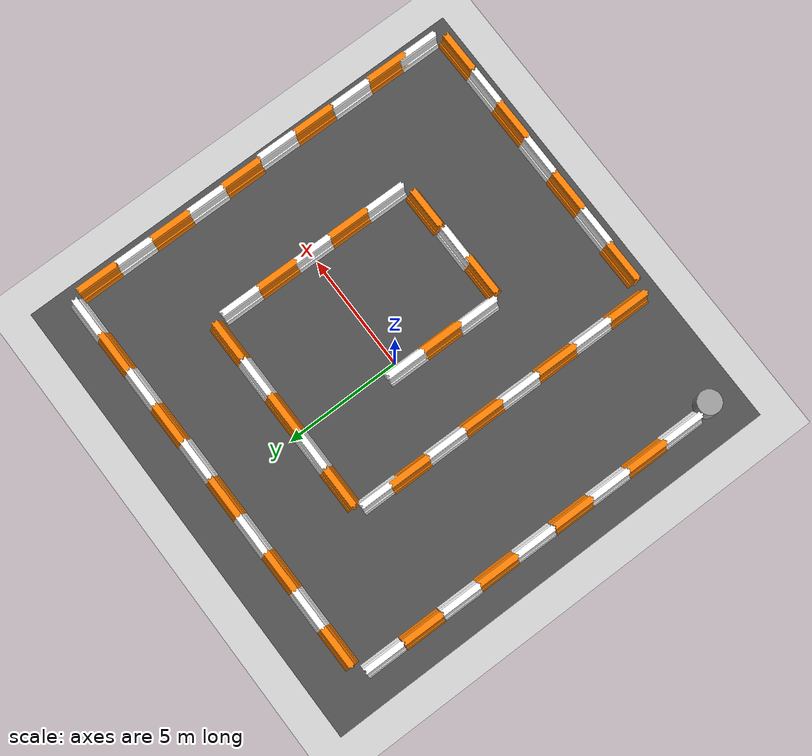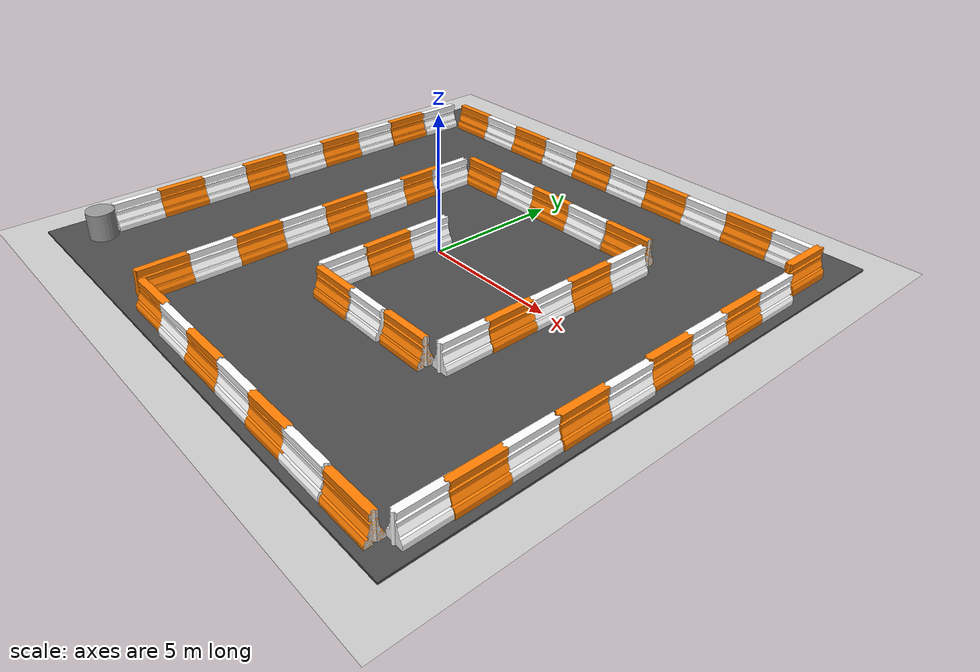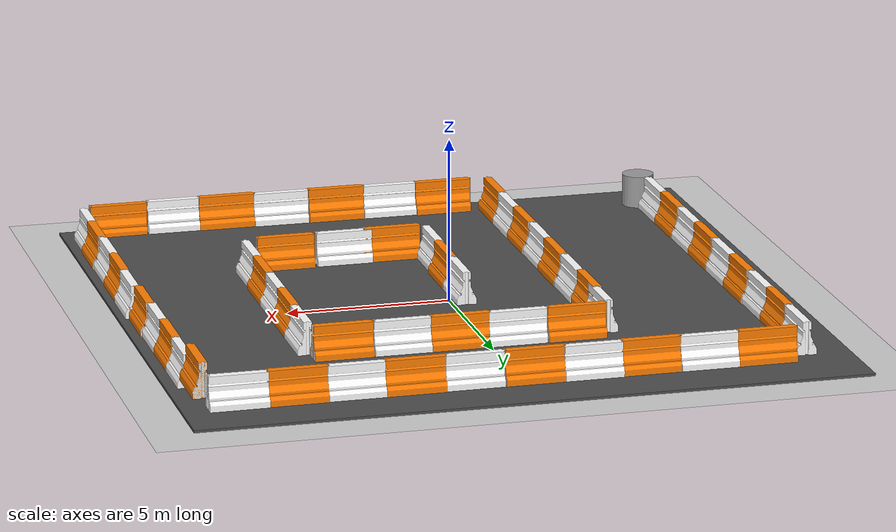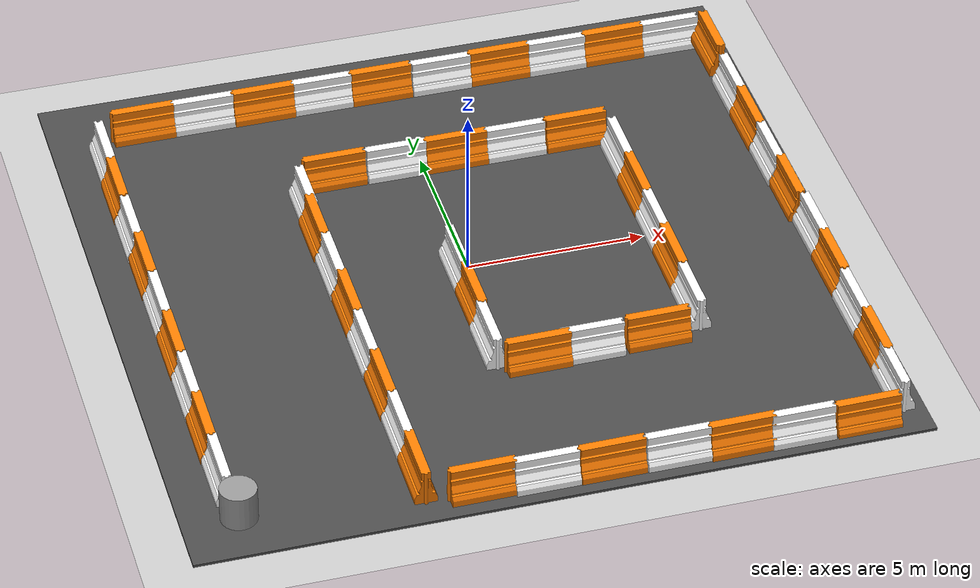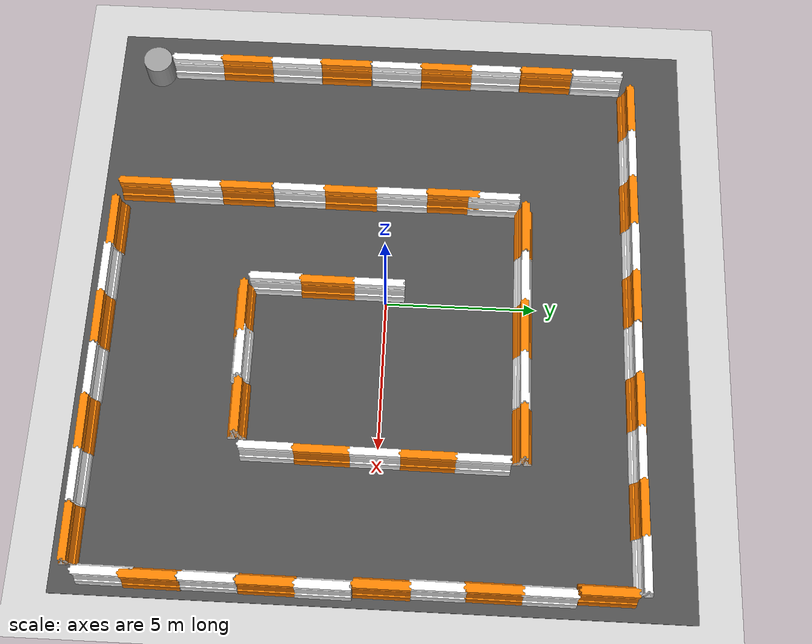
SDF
<sdf version="1.6">
 <world name="default">
  <light name="sun" type="directional">
   <pose>0 0 10 0 -0 0</pose>
   <diffuse>0.8 0.8 0.8 1</diffuse>
   <specular>0.2 0.2 0.2 1</specular>
   <attenuation>
    <range>1000</range>
    <constant>0.9</constant>
    <linear>0.01</linear>
    <quadratic>0.001</quadratic>
   </attenuation>
   <direction>-0.5 0.1 -0.9</direction>
  </light>
  <model name="ground_plane">
   <static>1</static>
   <link name="link">
    <collision name="collision">
     <geometry><plane><normal>0 0 1</normal><size>100 100</size></plane></geometry>
     <surface><friction><ode><mu>100</mu><mu2>50</mu2></ode></friction></surface>
    </collision>
    <visual name="visual">
     <cast_shadows>0</cast_shadows>
     <geometry><plane><normal>0 0 1</normal><size>100 100</size></plane></geometry>
     <material>
      <script><uri>file://media/materials/scripts/gazebo.material</uri><name>Gazebo/Grey</name></script>
     </material>
    </visual>
   </link>
  </model>
  <gravity>0 0 -9.8</gravity>
  <magnetic_field>6e-06 2.3e-05 -4.2e-05</magnetic_field>
  <atmosphere type="adiabatic"/>
  <physics name="default_physics" default="0" type="ode">
   <max_step_size>0.001</max_step_size>
   <real_time_factor>1</real_time_factor>
   <real_time_update_rate>1000</real_time_update_rate>
  </physics>
  <scene><ambient>0.4 0.4 0.4 1</ambient><background>0.7 0.7 0.7 1</background><shadows>1</shadows></scene>
  <spherical_coordinates>
   <surface_model>EARTH_WGS84</surface_model>
   <latitude_deg>0</latitude_deg>
   <longitude_deg>0</longitude_deg>
   <elevation>0</elevation>
   <heading_deg>0</heading_deg>
  </spherical_coordinates>
  <model name="drc_practice_white_jersey_barrier">
   <static>1</static>
   <link name="link">
    <visual name="visual">
     <geometry>
      <mesh><uri>model://drc_practice_white_jersey_barrier/meshes/jersey_barrier.dae</uri></mesh>
     </geometry>
    </visual>
    <collision name="collision">
     <geometry>
      <mesh><uri>model://drc_practice_white_jersey_barrier/meshes/jersey_barrier.dae</uri></mesh>
     </geometry>
    </collision>
   </link>
   <pose>-8.62001 -7.06221 0 0 -0 0</pose>
  </model>
  <model name="drc_practice_organge_jersey_barrier">
   <static>1</static>
   <link name="link">
    <visual name="visual">
     <geometry>
      <mesh><uri>model://drc_practice_orange_jersey_barrier/meshes/jersey_barrier.dae</uri></mesh>
     </geometry>
    </visual>
    <collision name="collision">
     <geometry>
      <mesh><uri>model://drc_practice_orange_jersey_barrier/meshes/jersey_barrier.dae</uri></mesh>
     </geometry>
    </collision>
   </link>
   <pose>-8.62729 -5.31264 0 0 -0 0</pose>
  </model>
  <model name="drc_practice_white_jersey_barrier_0">
   <static>1</static>
   <link name="link">
    <visual name="visual">
     <geometry>
      <mesh><uri>model://drc_practice_white_jersey_barrier/meshes/jersey_barrier.dae</uri></mesh>
     </geometry>
    </visual>
    <collision name="collision">
     <geometry>
      <mesh><uri>model://drc_practice_white_jersey_barrier/meshes/jersey_barrier.dae</uri></mesh>
     </geometry>
    </collision>
   </link>
   <pose>-8.63117 -3.55828 0 0 -0 0</pose>
  </model>
  <model name="drc_practice_organge_jersey_barrier_0">
   <static>1</static>
   <link name="link">
    <visual name="visual">
     <geometry>
      <mesh><uri>model://drc_practice_orange_jersey_barrier/meshes/jersey_barrier.dae</uri></mesh>
     </geometry>
    </visual>
    <collision name="collision">
     <geometry>
      <mesh><uri>model://drc_practice_orange_jersey_barrier/meshes/jersey_barrier.dae</uri></mesh>
     </geometry>
    </collision>
   </link>
   <pose>-8.63117 -1.7988 0 0 -0 0</pose>
  </model>
  <model name="drc_practice_white_jersey_barrier_1">
   <static>1</static>
   <link name="link">
    <visual name="visual">
     <geometry>
      <mesh><uri>model://drc_practice_white_jersey_barrier/meshes/jersey_barrier.dae</uri></mesh>
     </geometry>
    </visual>
    <collision name="collision">
     <geometry>
      <mesh><uri>model://drc_practice_white_jersey_barrier/meshes/jersey_barrier.dae</uri></mesh>
     </geometry>
    </collision>
   </link>
   <pose>-8.63117 -0.016466 0 0 -0 0</pose>
  </model>
  <model name="drc_practice_organge_jersey_barrier_1">
   <static>1</static>
   <link name="link">
    <visual name="visual">
     <geometry>
      <mesh><uri>model://drc_practice_orange_jersey_barrier/meshes/jersey_barrier.dae</uri></mesh>
     </geometry>
    </visual>
    <collision name="collision">
     <geometry>
      <mesh><uri>model://drc_practice_orange_jersey_barrier/meshes/jersey_barrier.dae</uri></mesh>
     </geometry>
    </collision>
   </link>
   <pose>-8.63117 1.74301 0 0 -0 0</pose>
  </model>
  <model name="drc_practice_white_jersey_barrier_2">
   <static>1</static>
   <link name="link">
    <visual name="visual">
     <geometry>
      <mesh><uri>model://drc_practice_white_jersey_barrier/meshes/jersey_barrier.dae</uri></mesh>
     </geometry>
    </visual>
    <collision name="collision">
     <geometry>
      <mesh><uri>model://drc_practice_white_jersey_barrier/meshes/jersey_barrier.dae</uri></mesh>
     </geometry>
    </collision>
   </link>
   <pose>-8.65403 3.47964 0 0 -0 0</pose>
  </model>
  <model name="drc_practice_organge_jersey_barrier_2">
   <static>1</static>
   <link name="link">
    <visual name="visual">
     <geometry>
      <mesh><uri>model://drc_practice_orange_jersey_barrier/meshes/jersey_barrier.dae</uri></mesh>
     </geometry>
    </visual>
    <collision name="collision">
     <geometry>
      <mesh><uri>model://drc_practice_orange_jersey_barrier/meshes/jersey_barrier.dae</uri></mesh>
     </geometry>
    </collision>
   </link>
   <pose>-8.65403 5.26198 0 0 -0 0</pose>
  </model>
  <model name="drc_practice_white_jersey_barrier_3">
   <static>1</static>
   <link name="link">
    <visual name="visual">
     <geometry>
      <mesh><uri>model://drc_practice_white_jersey_barrier/meshes/jersey_barrier.dae</uri></mesh>
     </geometry>
    </visual>
    <collision name="collision">
     <geometry>
      <mesh><uri>model://drc_practice_white_jersey_barrier/meshes/jersey_barrier.dae</uri></mesh>
     </geometry>
    </collision>
   </link>
   <pose>-8.63121 7.04431 0 0 -0 0</pose>
  </model>
  <model name="drc_practice_organge_jersey_barrier_3">
   <static>1</static>
   <link name="link">
    <visual name="visual">
     <geometry>
      <mesh><uri>model://drc_practice_orange_jersey_barrier/meshes/jersey_barrier.dae</uri></mesh>
     </geometry>
    </visual>
    <collision name="collision">
     <geometry>
      <mesh><uri>model://drc_practice_orange_jersey_barrier/meshes/jersey_barrier.dae</uri></mesh>
     </geometry>
    </collision>
   </link>
   <pose>-7.29393 8.17346 0 0 0 -1.55728</pose>
  </model>
  <model name="drc_practice_white_jersey_barrier_4">
   <static>1</static>
   <link name="link">
    <visual name="visual">
     <geometry>
      <mesh><uri>model://drc_practice_white_jersey_barrier/meshes/jersey_barrier.dae</uri></mesh>
     </geometry>
    </visual>
    <collision name="collision">
     <geometry>
      <mesh><uri>model://drc_practice_white_jersey_barrier/meshes/jersey_barrier.dae</uri></mesh>
     </geometry>
    </collision>
   </link>
   <pose>-5.54303 8.19136 0 0 0 -1.5638</pose>
  </model>
  <model name="drc_practice_organge_jersey_barrier_3_clone">
   <static>1</static>
   <link name="link">
    <visual name="visual">
     <geometry>
      <mesh><uri>model://drc_practice_orange_jersey_barrier/meshes/jersey_barrier.dae</uri></mesh>
     </geometry>
    </visual>
    <collision name="collision">
     <geometry>
      <mesh><uri>model://drc_practice_orange_jersey_barrier/meshes/jersey_barrier.dae</uri></mesh>
     </geometry>
    </collision>
   </link>
   <pose>-3.7837 8.19183 0 0 0 -1.55728</pose>
  </model>
  <model name="drc_practice_white_jersey_barrier_4_clone">
   <static>1</static>
   <link name="link">
    <visual name="visual">
     <geometry>
      <mesh><uri>model://drc_practice_white_jersey_barrier/meshes/jersey_barrier.dae</uri></mesh>
     </geometry>
    </visual>
    <collision name="collision">
     <geometry>
      <mesh><uri>model://drc_practice_white_jersey_barrier/meshes/jersey_barrier.dae</uri></mesh>
     </geometry>
    </collision>
   </link>
   <pose>-2.06611 8.22766 0 0 0 -1.5638</pose>
  </model>
  <model name="drc_practice_organge_jersey_barrier_3_clone_clone">
   <static>1</static>
   <link name="link">
    <visual name="visual">
     <geometry>
      <mesh><uri>model://drc_practice_orange_jersey_barrier/meshes/jersey_barrier.dae</uri></mesh>
     </geometry>
    </visual>
    <collision name="collision">
     <geometry>
      <mesh><uri>model://drc_practice_orange_jersey_barrier/meshes/jersey_barrier.dae</uri></mesh>
     </geometry>
    </collision>
   </link>
   <pose>-0.311739 8.23041 0 0 0 -1.55728</pose>
  </model>
  <model name="drc_practice_white_jersey_barrier_4_clone_clone">
   <static>1</static>
   <link name="link">
    <visual name="visual">
     <geometry>
      <mesh><uri>model://drc_practice_white_jersey_barrier/meshes/jersey_barrier.dae</uri></mesh>
     </geometry>
    </visual>
    <collision name="collision">
     <geometry>
      <mesh><uri>model://drc_practice_white_jersey_barrier/meshes/jersey_barrier.dae</uri></mesh>
     </geometry>
    </collision>
   </link>
   <pose>1.47021 8.23322 0 0 0 -1.5638</pose>
  </model>
  <model name="drc_practice_organge_jersey_barrier_3_clone_clone_clone">
   <static>1</static>
   <link name="link">
    <visual name="visual">
     <geometry>
      <mesh><uri>model://drc_practice_orange_jersey_barrier/meshes/jersey_barrier.dae</uri></mesh>
     </geometry>
    </visual>
    <collision name="collision">
     <geometry>
      <mesh><uri>model://drc_practice_orange_jersey_barrier/meshes/jersey_barrier.dae</uri></mesh>
     </geometry>
    </collision>
   </link>
   <pose>3.21439 8.27255 0 0 0 -1.55728</pose>
  </model>
  <model name="drc_practice_white_jersey_barrier_4_clone_clone_clone">
   <static>1</static>
   <link name="link">
    <visual name="visual">
     <geometry>
      <mesh><uri>model://drc_practice_white_jersey_barrier/meshes/jersey_barrier.dae</uri></mesh>
     </geometry>
    </visual>
    <collision name="collision">
     <geometry>
      <mesh><uri>model://drc_practice_white_jersey_barrier/meshes/jersey_barrier.dae</uri></mesh>
     </geometry>
    </collision>
   </link>
   <pose>4.92187 8.28349 0 0 0 -1.5638</pose>
  </model>
  <model name="drc_practice_organge_jersey_barrier_3_clone_clone_clone_clone">
   <static>1</static>
   <link name="link">
    <visual name="visual">
     <geometry>
      <mesh><uri>model://drc_practice_orange_jersey_barrier/meshes/jersey_barrier.dae</uri></mesh>
     </geometry>
    </visual>
    <collision name="collision">
     <geometry>
      <mesh><uri>model://drc_practice_orange_jersey_barrier/meshes/jersey_barrier.dae</uri></mesh>
     </geometry>
    </collision>
   </link>
   <pose>6.66177 8.31151 0 0 0 -1.55728</pose>
  </model>
  <model name="asphalt_plane">
   <static>1</static>
   <link name="link">
    <collision name="collision"><geometry><box><size>20 20 0.1</size></box></geometry></collision>
    <visual name="visual">
     <cast_shadows>0</cast_shadows>
     <geometry><box><size>20 20 0.1</size></box></geometry>
     <material>
      <script>
       <uri>model://asphalt_plane/materials/scripts</uri>
       <uri>model://asphalt_plane/materials/textures</uri>
       <name>vrc/asphalt</name>
      </script>
     </material>
    </visual>
   </link>
   <pose>0.006422 0.060238 0 0 -0 0</pose>
  </model>
  <model name="drc_practice_organge_jersey_barrier_4">
   <static>1</static>
   <link name="link">
    <visual name="visual">
     <geometry>
      <mesh><uri>model://drc_practice_orange_jersey_barrier/meshes/jersey_barrier.dae</uri></mesh>
     </geometry>
    </visual>
    <collision name="collision">
     <geometry>
      <mesh><uri>model://drc_practice_orange_jersey_barrier/meshes/jersey_barrier.dae</uri></mesh>
     </geometry>
    </collision>
   </link>
   <pose>9.30105 7.18565 0.290851 0 -0 0</pose>
  </model>
  <model name="drc_practice_white_jersey_barrier_6">
   <static>1</static>
   <link name="link">
    <visual name="visual">
     <geometry>
      <mesh><uri>model://drc_practice_white_jersey_barrier/meshes/jersey_barrier.dae</uri></mesh>
     </geometry>
    </visual>
    <collision name="collision">
     <geometry>
      <mesh><uri>model://drc_practice_white_jersey_barrier/meshes/jersey_barrier.dae</uri></mesh>
     </geometry>
    </collision>
   </link>
   <pose>9.36813 5.43388 0 0 -0 0</pose>
  </model>
  <model name="drc_practice_organge_jersey_barrier_clone">
   <static>1</static>
   <link name="link">
    <visual name="visual">
     <geometry>
      <mesh><uri>model://drc_practice_orange_jersey_barrier/meshes/jersey_barrier.dae</uri></mesh>
     </geometry>
    </visual>
    <collision name="collision">
     <geometry>
      <mesh><uri>model://drc_practice_orange_jersey_barrier/meshes/jersey_barrier.dae</uri></mesh>
     </geometry>
    </collision>
   </link>
   <pose>9.35685 3.76126 0 0 -0 0</pose>
  </model>
  <model name="drc_practice_white_jersey_barrier_2_clone">
   <static>1</static>
   <link name="link">
    <visual name="visual">
     <geometry>
      <mesh><uri>model://drc_practice_white_jersey_barrier/meshes/jersey_barrier.dae</uri></mesh>
     </geometry>
    </visual>
    <collision name="collision">
     <geometry>
      <mesh><uri>model://drc_practice_white_jersey_barrier/meshes/jersey_barrier.dae</uri></mesh>
     </geometry>
    </collision>
   </link>
   <pose>9.36462 2.06056 0 0 -0 0</pose>
  </model>
  <model name="drc_practice_organge_jersey_barrier_5">
   <static>1</static>
   <link name="link">
    <visual name="visual">
     <geometry>
      <mesh><uri>model://drc_practice_orange_jersey_barrier/meshes/jersey_barrier.dae</uri></mesh>
     </geometry>
    </visual>
    <collision name="collision">
     <geometry>
      <mesh><uri>model://drc_practice_orange_jersey_barrier/meshes/jersey_barrier.dae</uri></mesh>
     </geometry>
    </collision>
   </link>
   <pose>9.39818 0.359769 0 0 -0 0</pose>
  </model>
  <model name="drc_practice_white_jersey_barrier_7">
   <static>1</static>
   <link name="link">
    <visual name="visual">
     <geometry>
      <mesh><uri>model://drc_practice_white_jersey_barrier/meshes/jersey_barrier.dae</uri></mesh>
     </geometry>
    </visual>
    <collision name="collision">
     <geometry>
      <mesh><uri>model://drc_practice_white_jersey_barrier/meshes/jersey_barrier.dae</uri></mesh>
     </geometry>
    </collision>
   </link>
   <pose>9.48367 -1.42373 0 0 -0 0</pose>
  </model>
  <model name="drc_practice_organge_jersey_barrier_6">
   <static>1</static>
   <link name="link">
    <visual name="visual">
     <geometry>
      <mesh><uri>model://drc_practice_orange_jersey_barrier/meshes/jersey_barrier.dae</uri></mesh>
     </geometry>
    </visual>
    <collision name="collision">
     <geometry>
      <mesh><uri>model://drc_practice_orange_jersey_barrier/meshes/jersey_barrier.dae</uri></mesh>
     </geometry>
    </collision>
   </link>
   <pose>9.45412 -3.1447 0 0 -0 0</pose>
  </model>
  <model name="drc_practice_white_jersey_barrier_8">
   <static>1</static>
   <link name="link">
    <visual name="visual">
     <geometry>
      <mesh><uri>model://drc_practice_white_jersey_barrier/meshes/jersey_barrier.dae</uri></mesh>
     </geometry>
    </visual>
    <collision name="collision">
     <geometry>
      <mesh><uri>model://drc_practice_white_jersey_barrier/meshes/jersey_barrier.dae</uri></mesh>
     </geometry>
    </collision>
   </link>
   <pose>9.42629 -4.92564 0 0 -0 0</pose>
  </model>
  <model name="drc_practice_organge_jersey_barrier_7">
   <static>1</static>
   <link name="link">
    <visual name="visual">
     <geometry>
      <mesh><uri>model://drc_practice_orange_jersey_barrier/meshes/jersey_barrier.dae</uri></mesh>
     </geometry>
    </visual>
    <collision name="collision">
     <geometry>
      <mesh><uri>model://drc_practice_orange_jersey_barrier/meshes/jersey_barrier.dae</uri></mesh>
     </geometry>
    </collision>
   </link>
   <pose>9.43964 -6.68634 0 0 -0 0</pose>
  </model>
  <model name="drc_practice_organge_jersey_barrier_3_clone_clone_clone_clone_0">
   <static>1</static>
   <link name="link">
    <visual name="visual">
     <geometry>
      <mesh><uri>model://drc_practice_orange_jersey_barrier/meshes/jersey_barrier.dae</uri></mesh>
     </geometry>
    </visual>
    <collision name="collision">
     <geometry>
      <mesh><uri>model://drc_practice_orange_jersey_barrier/meshes/jersey_barrier.dae</uri></mesh>
     </geometry>
    </collision>
   </link>
   <pose>8.25161 -9.36879 -0.056278 0 0 -1.55728</pose>
  </model>
  <model name="drc_practice_white_jersey_barrier_4_clone_clone_clone_clone_clone">
   <static>1</static>
   <link name="link">
    <visual name="visual">
     <geometry>
      <mesh><uri>model://drc_practice_white_jersey_barrier/meshes/jersey_barrier.dae</uri></mesh>
     </geometry>
    </visual>
    <collision name="collision">
     <geometry>
      <mesh><uri>model://drc_practice_white_jersey_barrier/meshes/jersey_barrier.dae</uri></mesh>
     </geometry>
    </collision>
   </link>
   <pose>6.44547 -9.37255 0 0 0 -1.5638</pose>
  </model>
  <model name="drc_practice_organge_jersey_barrier_3_clone_clone_clone_clone_0_clone">
   <static>1</static>
   <link name="link">
    <visual name="visual">
     <geometry>
      <mesh><uri>model://drc_practice_orange_jersey_barrier/meshes/jersey_barrier.dae</uri></mesh>
     </geometry>
    </visual>
    <collision name="collision">
     <geometry>
      <mesh><uri>model://drc_practice_orange_jersey_barrier/meshes/jersey_barrier.dae</uri></mesh>
     </geometry>
    </collision>
   </link>
   <pose>4.79474 -9.35603 0 0 0 -1.55728</pose>
  </model>
  <model name="drc_practice_white_jersey_barrier_4_clone_clone_clone_clone_clone_clone">
   <static>1</static>
   <link name="link">
    <visual name="visual">
     <geometry>
      <mesh><uri>model://drc_practice_white_jersey_barrier/meshes/jersey_barrier.dae</uri></mesh>
     </geometry>
    </visual>
    <collision name="collision">
     <geometry>
      <mesh><uri>model://drc_practice_white_jersey_barrier/meshes/jersey_barrier.dae</uri></mesh>
     </geometry>
    </collision>
   </link>
   <pose>3.05005 -9.32941 0 0 0 -1.5638</pose>
  </model>
  <model name="drc_practice_organge_jersey_barrier_3_clone_clone_clone_clone_0_clone_clone">
   <static>1</static>
   <link name="link">
    <visual name="visual">
     <geometry>
      <mesh><uri>model://drc_practice_orange_jersey_barrier/meshes/jersey_barrier.dae</uri></mesh>
     </geometry>
    </visual>
    <collision name="collision">
     <geometry>
      <mesh><uri>model://drc_practice_orange_jersey_barrier/meshes/jersey_barrier.dae</uri></mesh>
     </geometry>
    </collision>
   </link>
   <pose>1.26706 -9.32155 0 0 0 -1.55728</pose>
  </model>
  <model name="drc_practice_organge_jersey_barrier_clone_0">
   <static>1</static>
   <link name="link">
    <visual name="visual">
     <geometry>
      <mesh><uri>model://drc_practice_orange_jersey_barrier/meshes/jersey_barrier.dae</uri></mesh>
     </geometry>
    </visual>
    <collision name="collision">
     <geometry>
      <mesh><uri>model://drc_practice_orange_jersey_barrier/meshes/jersey_barrier.dae</uri></mesh>
     </geometry>
    </collision>
   </link>
   <pose>-3.68251 -8.32459 0 0 -0 0</pose>
  </model>
  <model name="drc_practice_white_jersey_barrier_0_clone">
   <static>1</static>
   <link name="link">
    <visual name="visual">
     <geometry>
      <mesh><uri>model://drc_practice_white_jersey_barrier/meshes/jersey_barrier.dae</uri></mesh>
     </geometry>
    </visual>
    <collision name="collision">
     <geometry>
      <mesh><uri>model://drc_practice_white_jersey_barrier/meshes/jersey_barrier.dae</uri></mesh>
     </geometry>
    </collision>
   </link>
   <pose>-3.67794 -6.625 0 0 -0 0</pose>
  </model>
  <model name="drc_practice_organge_jersey_barrier_clone_0_clone">
   <static>1</static>
   <link name="link">
    <visual name="visual">
     <geometry>
      <mesh><uri>model://drc_practice_orange_jersey_barrier/meshes/jersey_barrier.dae</uri></mesh>
     </geometry>
    </visual>
    <collision name="collision">
     <geometry>
      <mesh><uri>model://drc_practice_orange_jersey_barrier/meshes/jersey_barrier.dae</uri></mesh>
     </geometry>
    </collision>
   </link>
   <pose>-3.68895 -4.87973 0 0 -0 0</pose>
  </model>
  <model name="drc_practice_white_jersey_barrier_0_clone_clone">
   <static>1</static>
   <link name="link">
    <visual name="visual">
     <geometry>
      <mesh><uri>model://drc_practice_white_jersey_barrier/meshes/jersey_barrier.dae</uri></mesh>
     </geometry>
    </visual>
    <collision name="collision">
     <geometry>
      <mesh><uri>model://drc_practice_white_jersey_barrier/meshes/jersey_barrier.dae</uri></mesh>
     </geometry>
    </collision>
   </link>
   <pose>-3.70219 -3.1056 0 0 -0 0</pose>
  </model>
  <model name="drc_practice_organge_jersey_barrier_clone_0_clone_clone">
   <static>1</static>
   <link name="link">
    <visual name="visual">
     <geometry>
      <mesh><uri>model://drc_practice_orange_jersey_barrier/meshes/jersey_barrier.dae</uri></mesh>
     </geometry>
    </visual>
    <collision name="collision">
     <geometry>
      <mesh><uri>model://drc_practice_orange_jersey_barrier/meshes/jersey_barrier.dae</uri></mesh>
     </geometry>
    </collision>
   </link>
   <pose>-3.68814 -1.34998 0 0 -0 0</pose>
  </model>
  <model name="drc_practice_white_jersey_barrier_0_clone_clone_0">
   <static>1</static>
   <link name="link">
    <visual name="visual">
     <geometry>
      <mesh><uri>model://drc_practice_white_jersey_barrier/meshes/jersey_barrier.dae</uri></mesh>
     </geometry>
    </visual>
    <collision name="collision">
     <geometry>
      <mesh><uri>model://drc_practice_white_jersey_barrier/meshes/jersey_barrier.dae</uri></mesh>
     </geometry>
    </collision>
   </link>
   <pose>-3.70758 0.377763 0 0 -0 0</pose>
  </model>
  <model name="drc_practice_organge_jersey_barrier_clone_0_clone_clone_0">
   <static>1</static>
   <link name="link">
    <visual name="visual">
     <geometry>
      <mesh><uri>model://drc_practice_orange_jersey_barrier/meshes/jersey_barrier.dae</uri></mesh>
     </geometry>
    </visual>
    <collision name="collision">
     <geometry>
      <mesh><uri>model://drc_practice_orange_jersey_barrier/meshes/jersey_barrier.dae</uri></mesh>
     </geometry>
    </collision>
   </link>
   <pose>-3.72892 2.1308 0 0 -0 0</pose>
  </model>
  <model name="drc_practice_white_jersey_barrier_0_clone_clone_clone">
   <static>1</static>
   <link name="link">
    <visual name="visual">
     <geometry>
      <mesh><uri>model://drc_practice_white_jersey_barrier/meshes/jersey_barrier.dae</uri></mesh>
     </geometry>
    </visual>
    <collision name="collision">
     <geometry>
      <mesh><uri>model://drc_practice_white_jersey_barrier/meshes/jersey_barrier.dae</uri></mesh>
     </geometry>
    </collision>
   </link>
   <pose>-3.68719 3.507 0 0 -0 0</pose>
  </model>
  <model name="drc_practice_organge_jersey_barrier_3_clone_clone_clone_0">
   <static>1</static>
   <link name="link">
    <visual name="visual">
     <geometry>
      <mesh><uri>model://drc_practice_orange_jersey_barrier/meshes/jersey_barrier.dae</uri></mesh>
     </geometry>
    </visual>
    <collision name="collision">
     <geometry>
      <mesh><uri>model://drc_practice_orange_jersey_barrier/meshes/jersey_barrier.dae</uri></mesh>
     </geometry>
    </collision>
   </link>
   <pose>-2.61096 4.57246 0 0 0 -1.55728</pose>
  </model>
  <model name="drc_practice_white_jersey_barrier_4_clone_clone_clone_0">
   <static>1</static>
   <link name="link">
    <visual name="visual">
     <geometry>
      <mesh><uri>model://drc_practice_white_jersey_barrier/meshes/jersey_barrier.dae</uri></mesh>
     </geometry>
    </visual>
    <collision name="collision">
     <geometry>
      <mesh><uri>model://drc_practice_white_jersey_barrier/meshes/jersey_barrier.dae</uri></mesh>
     </geometry>
    </collision>
   </link>
   <pose>-0.822004 4.57105 0 0 0 -1.5638</pose>
  </model>
  <model name="drc_practice_organge_jersey_barrier_3_clone_clone_clone_0_clone">
   <static>1</static>
   <link name="link">
    <visual name="visual">
     <geometry>
      <mesh><uri>model://drc_practice_orange_jersey_barrier/meshes/jersey_barrier.dae</uri></mesh>
     </geometry>
    </visual>
    <collision name="collision">
     <geometry>
      <mesh><uri>model://drc_practice_orange_jersey_barrier/meshes/jersey_barrier.dae</uri></mesh>
     </geometry>
    </collision>
   </link>
   <pose>0.915362 4.57152 0 0 0 -1.55728</pose>
  </model>
  <model name="drc_practice_white_jersey_barrier_4_clone_clone_clone_0_clone">
   <static>1</static>
   <link name="link">
    <visual name="visual">
     <geometry>
      <mesh><uri>model://drc_practice_white_jersey_barrier/meshes/jersey_barrier.dae</uri></mesh>
     </geometry>
    </visual>
    <collision name="collision">
     <geometry>
      <mesh><uri>model://drc_practice_white_jersey_barrier/meshes/jersey_barrier.dae</uri></mesh>
     </geometry>
    </collision>
   </link>
   <pose>2.63548 4.57928 0 0 0 -1.5638</pose>
  </model>
  <model name="drc_practice_organge_jersey_barrier_3_clone_clone_clone_0_clone_clone">
   <static>1</static>
   <link name="link">
    <visual name="visual">
     <geometry>
      <mesh><uri>model://drc_practice_orange_jersey_barrier/meshes/jersey_barrier.dae</uri></mesh>
     </geometry>
    </visual>
    <collision name="collision">
     <geometry>
      <mesh><uri>model://drc_practice_orange_jersey_barrier/meshes/jersey_barrier.dae</uri></mesh>
     </geometry>
    </collision>
   </link>
   <pose>4.42936 4.59877 0 0 0 -1.55728</pose>
  </model>
  <model name="drc_practice_white_jersey_barrier_6_clone">
   <static>1</static>
   <link name="link">
    <visual name="visual">
     <geometry>
      <mesh><uri>model://drc_practice_white_jersey_barrier/meshes/jersey_barrier.dae</uri></mesh>
     </geometry>
    </visual>
    <collision name="collision">
     <geometry>
      <mesh><uri>model://drc_practice_white_jersey_barrier/meshes/jersey_barrier.dae</uri></mesh>
     </geometry>
    </collision>
   </link>
   <pose>5.36188 3.34791 0 0 -0 0</pose>
  </model>
  <model name="drc_practice_organge_jersey_barrier_clone_clone">
   <static>1</static>
   <link name="link">
    <visual name="visual">
     <geometry>
      <mesh><uri>model://drc_practice_orange_jersey_barrier/meshes/jersey_barrier.dae</uri></mesh>
     </geometry>
    </visual>
    <collision name="collision">
     <geometry>
      <mesh><uri>model://drc_practice_orange_jersey_barrier/meshes/jersey_barrier.dae</uri></mesh>
     </geometry>
    </collision>
   </link>
   <pose>5.34711 1.62707 0 0 -0 0</pose>
  </model>
  <model name="drc_practice_white_jersey_barrier_6_clone_clone">
   <static>1</static>
   <link name="link">
    <visual name="visual">
     <geometry>
      <mesh><uri>model://drc_practice_white_jersey_barrier/meshes/jersey_barrier.dae</uri></mesh>
     </geometry>
    </visual>
    <collision name="collision">
     <geometry>
      <mesh><uri>model://drc_practice_white_jersey_barrier/meshes/jersey_barrier.dae</uri></mesh>
     </geometry>
    </collision>
   </link>
   <pose>5.33234 -0.093772 0 0 -0 0</pose>
  </model>
  <model name="drc_practice_organge_jersey_barrier_5_clone">
   <static>1</static>
   <link name="link">
    <visual name="visual">
     <geometry>
      <mesh><uri>model://drc_practice_orange_jersey_barrier/meshes/jersey_barrier.dae</uri></mesh>
     </geometry>
    </visual>
    <collision name="collision">
     <geometry>
      <mesh><uri>model://drc_practice_orange_jersey_barrier/meshes/jersey_barrier.dae</uri></mesh>
     </geometry>
    </collision>
   </link>
   <pose>5.32489 -1.74091 0 0 -0 0</pose>
  </model>
  <model name="drc_practice_white_jersey_barrier_6_clone_clone_clone">
   <static>1</static>
   <link name="link">
    <visual name="visual">
     <geometry>
      <mesh><uri>model://drc_practice_white_jersey_barrier/meshes/jersey_barrier.dae</uri></mesh>
     </geometry>
    </visual>
    <collision name="collision">
     <geometry>
      <mesh><uri>model://drc_practice_white_jersey_barrier/meshes/jersey_barrier.dae</uri></mesh>
     </geometry>
    </collision>
   </link>
   <pose>5.29186 -3.4887 0 0 -0 0</pose>
  </model>
  <model name="drc_practice_white_jersey_barrier_4_clone_clone_clone_clone_0">
   <static>1</static>
   <link name="link">
    <visual name="visual">
     <geometry>
      <mesh><uri>model://drc_practice_white_jersey_barrier/meshes/jersey_barrier.dae</uri></mesh>
     </geometry>
    </visual>
    <collision name="collision">
     <geometry>
      <mesh><uri>model://drc_practice_white_jersey_barrier/meshes/jersey_barrier.dae</uri></mesh>
     </geometry>
    </collision>
   </link>
   <pose>8.36912 8.35093 0 0 0 -1.5638</pose>
  </model>
  <model name="drc_practice_white_jersey_barrier_7_clone">
   <static>1</static>
   <link name="link">
    <visual name="visual">
     <geometry>
      <mesh><uri>model://drc_practice_white_jersey_barrier/meshes/jersey_barrier.dae</uri></mesh>
     </geometry>
    </visual>
    <collision name="collision">
     <geometry>
      <mesh><uri>model://drc_practice_white_jersey_barrier/meshes/jersey_barrier.dae</uri></mesh>
     </geometry>
    </collision>
   </link>
   <pose>9.40264 -8.1717 0 0 -0 0</pose>
  </model>
  <model name="drc_practice_organge_jersey_barrier_3_clone_clone_clone_clone_0_clone_clone_clone">
   <static>1</static>
   <link name="link">
    <visual name="visual">
     <geometry>
      <mesh><uri>model://drc_practice_orange_jersey_barrier/meshes/jersey_barrier.dae</uri></mesh>
     </geometry>
    </visual>
    <collision name="collision">
     <geometry>
      <mesh><uri>model://drc_practice_orange_jersey_barrier/meshes/jersey_barrier.dae</uri></mesh>
     </geometry>
    </collision>
   </link>
   <pose>-2.1923 -9.26175 0 0 0 -1.55728</pose>
  </model>
  <model name="drc_practice_white_jersey_barrier_4_clone_clone_clone_clone_clone_clone_clone">
   <static>1</static>
   <link name="link">
    <visual name="visual">
     <geometry>
      <mesh><uri>model://drc_practice_white_jersey_barrier/meshes/jersey_barrier.dae</uri></mesh>
     </geometry>
    </visual>
    <collision name="collision">
     <geometry>
      <mesh><uri>model://drc_practice_white_jersey_barrier/meshes/jersey_barrier.dae</uri></mesh>
     </geometry>
    </collision>
   </link>
   <pose>-0.497979 -9.31771 0 0 0 -1.5638</pose>
  </model>
  <model name="drc_practice_organge_jersey_barrier_3_clone_clone_clone_clone_0_clone_clone_clone_0">
   <static>1</static>
   <link name="link">
    <visual name="visual">
     <geometry>
      <mesh><uri>model://drc_practice_orange_jersey_barrier/meshes/jersey_barrier.dae</uri></mesh>
     </geometry>
    </visual>
    <collision name="collision">
     <geometry>
      <mesh><uri>model://drc_practice_orange_jersey_barrier/meshes/jersey_barrier.dae</uri></mesh>
     </geometry>
    </collision>
   </link>
   <pose>4.01223 -4.5332 0 0 0 -1.55728</pose>
  </model>
  <model name="drc_practice_white_jersey_barrier_4_clone_clone_clone_clone_clone_clone_clone_clone">
   <static>1</static>
   <link name="link">
    <visual name="visual">
     <geometry>
      <mesh><uri>model://drc_practice_white_jersey_barrier/meshes/jersey_barrier.dae</uri></mesh>
     </geometry>
    </visual>
    <collision name="collision">
     <geometry>
      <mesh><uri>model://drc_practice_white_jersey_barrier/meshes/jersey_barrier.dae</uri></mesh>
     </geometry>
    </collision>
   </link>
   <pose>2.1514 -4.59903 0 0 0 -1.5638</pose>
  </model>
  <model name="drc_practice_organge_jersey_barrier_3_clone_clone_clone_clone_0_clone_clone_clone_0_clone">
   <static>1</static>
   <link name="link">
    <visual name="visual">
     <geometry>
      <mesh><uri>model://drc_practice_orange_jersey_barrier/meshes/jersey_barrier.dae</uri></mesh>
     </geometry>
    </visual>
    <collision name="collision">
     <geometry>
      <mesh><uri>model://drc_practice_orange_jersey_barrier/meshes/jersey_barrier.dae</uri></mesh>
     </geometry>
    </collision>
   </link>
   <pose>0.644038 -4.65306 0 0 0 -1.55728</pose>
  </model>
  <model name="unit_cylinder">
   <pose>-8.45132 -8.47363 0.549998 -4e-06 -0 0.079669</pose>
   <link name="link">
    <inertial>
     <mass>1</mass>
     <inertia><ixx>0.145833</ixx><ixy>0</ixy><ixz>0</ixz><iyy>0.145833</iyy><iyz>0</iyz><izz>0.125</izz></inertia>
    </inertial>
    <collision name="collision">
     <geometry><cylinder><radius>0.5</radius><length>1</length></cylinder></geometry>
    </collision>
    <visual name="visual">
     <geometry><cylinder><radius>0.5</radius><length>1</length></cylinder></geometry>
     <material>
      <script><name>Gazebo/Grey</name><uri>file://media/materials/scripts/gazebo.material</uri></script>
     </material>
    </visual>
   </link>
  </model>
  <model name="drc_practice_white_jersey_barrier_5">
   <static>1</static>
   <link name="link">
    <visual name="visual">
     <geometry>
      <mesh><uri>model://drc_practice_white_jersey_barrier/meshes/jersey_barrier.dae</uri></mesh>
     </geometry>
    </visual>
    <collision name="collision">
     <geometry>
      <mesh><uri>model://drc_practice_white_jersey_barrier/meshes/jersey_barrier.dae</uri></mesh>
     </geometry>
    </collision>
   </link>
   <pose>-0.426752 -3.61823 0 0 -0 0</pose>
  </model>
  <model name="drc_practice_organge_jersey_barrier_8">
   <static>1</static>
   <link name="link">
    <visual name="visual">
     <geometry>
      <mesh><uri>model://drc_practice_orange_jersey_barrier/meshes/jersey_barrier.dae</uri></mesh>
     </geometry>
    </visual>
    <collision name="collision">
     <geometry>
      <mesh><uri>model://drc_practice_orange_jersey_barrier/meshes/jersey_barrier.dae</uri></mesh>
     </geometry>
    </collision>
   </link>
   <pose>-0.374131 -1.9201 0 0 -0 0</pose>
  </model>
  <model name="drc_practice_white_jersey_barrier_9">
   <static>1</static>
   <link name="link">
    <visual name="visual">
     <geometry>
      <mesh><uri>model://drc_practice_white_jersey_barrier/meshes/jersey_barrier.dae</uri></mesh>
     </geometry>
    </visual>
    <collision name="collision">
     <geometry>
      <mesh><uri>model://drc_practice_white_jersey_barrier/meshes/jersey_barrier.dae</uri></mesh>
     </geometry>
    </collision>
   </link>
   <pose>-0.372909 -0.243097 0 0 -0 0</pose>
  </model>
 </world>
</sdf>
